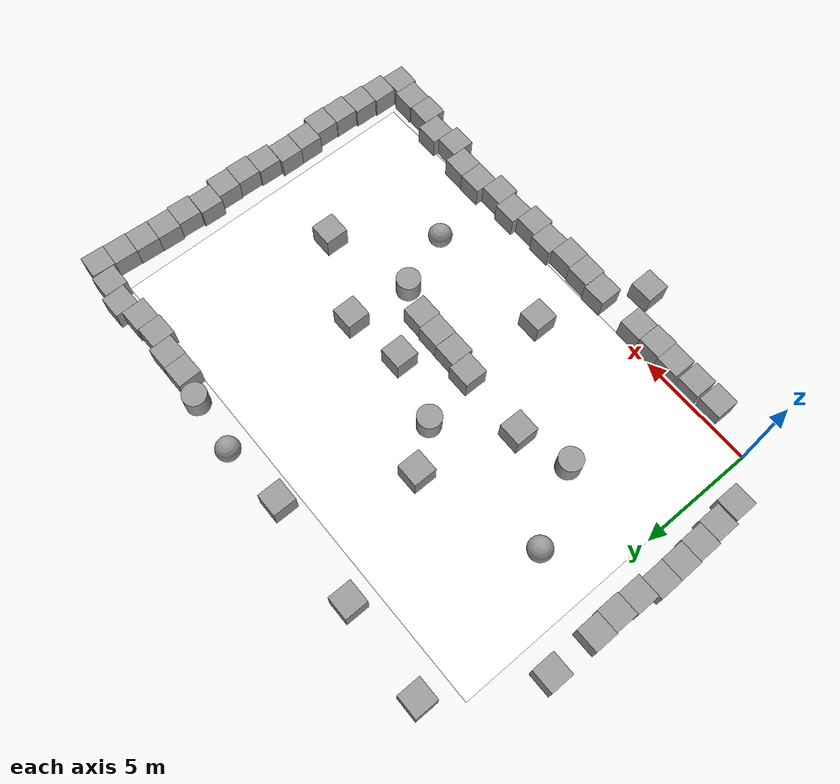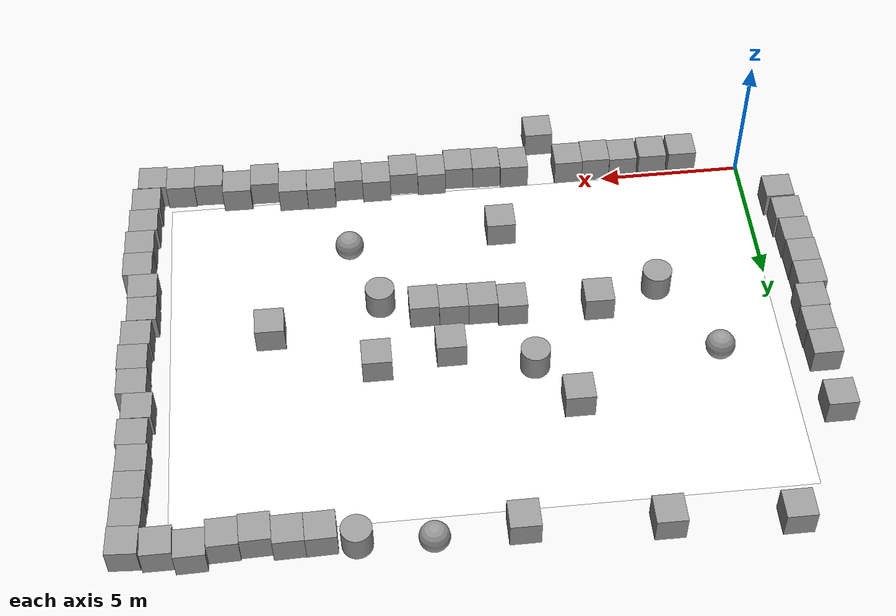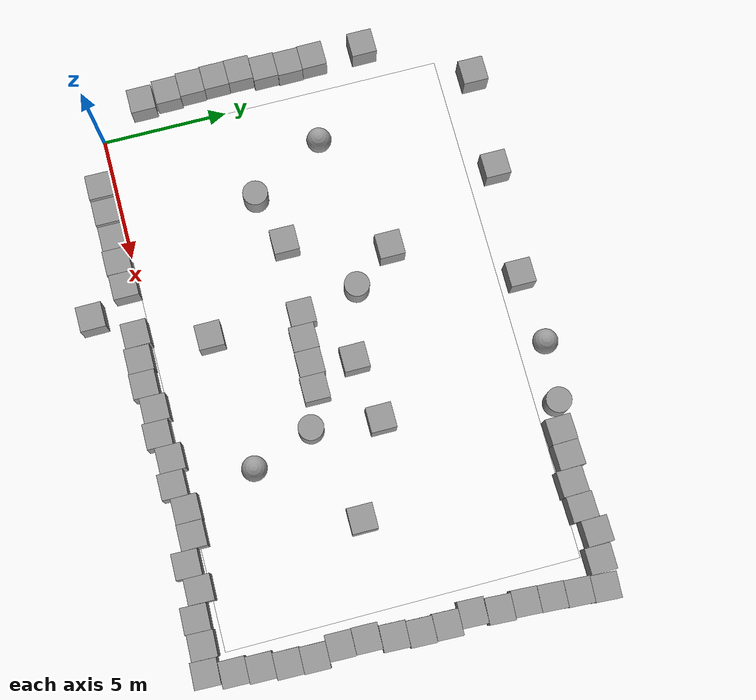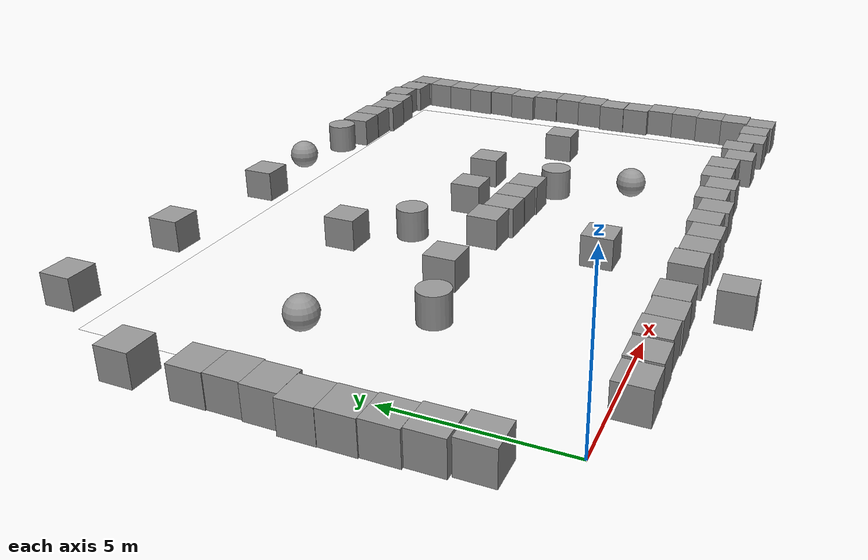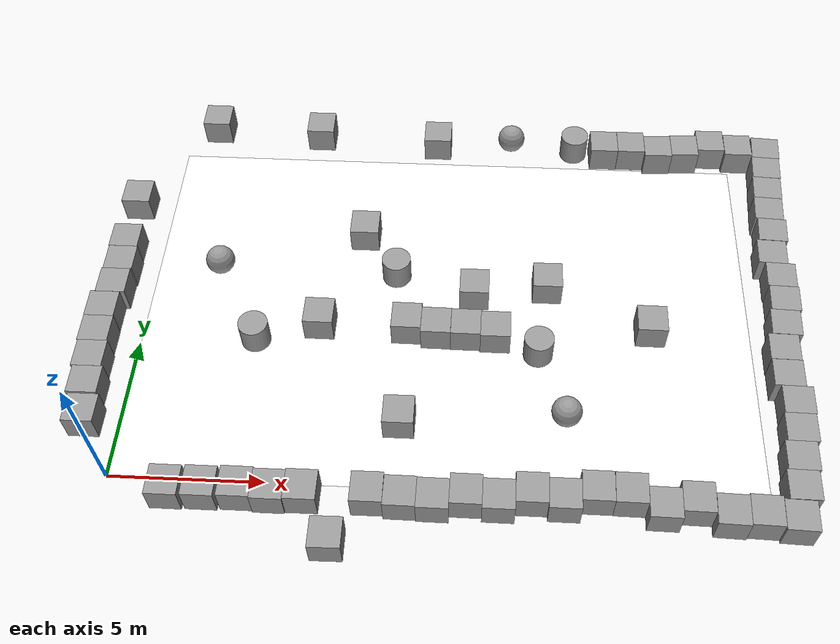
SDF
<sdf version="1.7">
 <world name="bfmc_official">
  <gravity>0 0 -9.8</gravity>
  <light name="c1" type="point">
   <pose>0 0 2 0 -0 0</pose>
   <diffuse>125 125 125 125</diffuse>
   <specular>50 50 50 50</specular>
   <attenuation><range>20</range><constant>0.3</constant><quadratic>0</quadratic><linear>0</linear></attenuation>
   <cast_shadows>0</cast_shadows>
   <direction>0 0 -1</direction>
   <spot><inner_angle>0</inner_angle><outer_angle>0</outer_angle><falloff>0</falloff></spot>
  </light>
  <light name="c2" type="point">
   <pose>15 0 2 0 -0 0</pose>
   <diffuse>125 125 125 125</diffuse>
   <specular>50 50 50 50</specular>
   <attenuation><range>20</range><constant>0.3</constant><quadratic>0</quadratic><linear>0</linear></attenuation>
   <cast_shadows>0</cast_shadows>
   <direction>0 0 -1</direction>
   <spot><inner_angle>0</inner_angle><outer_angle>0</outer_angle><falloff>0</falloff></spot>
  </light>
  <light name="c3" type="point">
   <pose>0 -15 2 0 -0 0</pose>
   <diffuse>125 125 125 125</diffuse>
   <specular>50 50 50 50</specular>
   <attenuation><range>20</range><constant>0.3</constant><quadratic>0</quadratic><linear>0</linear></attenuation>
   <cast_shadows>0</cast_shadows>
   <direction>0 0 -1</direction>
   <spot><inner_angle>0</inner_angle><outer_angle>0</outer_angle><falloff>0</falloff></spot>
  </light>
  <light name="c4" type="point">
   <pose>15 -15 2 0 -0 0</pose>
   <diffuse>125 125 125 125</diffuse>
   <specular>50 50 50 50</specular>
   <attenuation><range>50</range><constant>0.3</constant><quadratic>0</quadratic><linear>0</linear></attenuation>
   <cast_shadows>0</cast_shadows>
   <direction>0 0 -1</direction>
   <spot><inner_angle>0</inner_angle><outer_angle>0</outer_angle><falloff>0</falloff></spot>
  </light>
  <model name="track">
   <static>1</static>
   <link name="link">
    <collision name="collision">
     <geometry><plane><normal>0 0 1</normal><size>20.696 13.786</size></plane></geometry>
     <surface>
      <contact><collide_bitmask>65535</collide_bitmask></contact>
      <friction><ode><mu>1</mu><mu2>1</mu2></ode></friction>
     </surface>
    </collision>
    <visual name="visual">
     <geometry><plane><normal>0 0 1</normal><size>20.696 13.786</size></plane></geometry>
     <material>
      <ambient>1 1 1 1</ambient>
      <diffuse>1 1 1 1</diffuse>
      <specular>0 0 0 0</specular>
      <emissive>1 1 1 1</emissive>
      <script>
       <uri>model://track/materials/scripts</uri>
       <uri>model://track/materials/textures</uri>
       <name>BFMC_MATERIAL</name>
      </script>
     </material>
    </visual>
   </link>
   <pose>10.348 6.893 0 0 -0 0</pose>
  </model>
  <magnetic_field>6e-06 2.3e-05 -4.2e-05</magnetic_field>
  <atmosphere type="adiabatic"/>
  <physics name="default_physics" default="0" type="ode">
   <max_step_size>0.001</max_step_size>
   <real_time_factor>1</real_time_factor>
   <real_time_update_rate>1000</real_time_update_rate>
  </physics>
  <scene><ambient>0.4 0.4 0.4 1</ambient><background>0.7 0.7 0.7 1</background><shadows>1</shadows></scene>
  <audio><device>default</device></audio>
  <spherical_coordinates>
   <surface_model>EARTH_WGS84</surface_model>
   <latitude_deg>0</latitude_deg>
   <longitude_deg>0</longitude_deg>
   <elevation>0</elevation>
   <heading_deg>0</heading_deg>
  </spherical_coordinates>
  <model name="unit_box">
   <pose>5.25056 -0.5128 0.499995 -1e-05 -0 -0.004476</pose>
   <link name="link">
    <inertial>
     <mass>1</mass>
     <inertia>
      <ixx>0.166667</ixx>
      <ixy>0</ixy>
      <ixz>0</ixz>
      <iyy>0.166667</iyy>
      <iyz>0</iyz>
      <izz>0.166667</izz>
     </inertia>
    </inertial>
    <collision name="collision"><geometry><box><size>1 1 1</size></box></geometry></collision>
    <visual name="visual">
     <geometry><box><size>1 1 1</size></box></geometry>
     <material>
      <script><name>Gazebo/Grey</name><uri>file://media/materials/scripts/gazebo.material</uri></script>
     </material>
    </visual>
   </link>
  </model>
  <model name="unit_box_0">
   <pose>-1.05299 1.86974 0.499995 -1e-05 0 0</pose>
   <link name="link">
    <inertial>
     <mass>1</mass>
     <inertia>
      <ixx>0.166667</ixx>
      <ixy>0</ixy>
      <ixz>0</ixz>
      <iyy>0.166667</iyy>
      <iyz>0</iyz>
      <izz>0.166667</izz>
     </inertia>
    </inertial>
    <collision name="collision"><geometry><box><size>1 1 1</size></box></geometry></collision>
    <visual name="visual">
     <geometry><box><size>1 1 1</size></box></geometry>
     <material>
      <script><name>Gazebo/Grey</name><uri>file://media/materials/scripts/gazebo.material</uri></script>
     </material>
    </visual>
   </link>
  </model>
  <model name="unit_box_1">
   <pose>-1.16898 2.92188 0.499995 0 1e-05 0.003784</pose>
   <link name="link">
    <inertial>
     <mass>1</mass>
     <inertia>
      <ixx>0.166667</ixx>
      <ixy>0</ixy>
      <ixz>0</ixz>
      <iyy>0.166667</iyy>
      <iyz>0</iyz>
      <izz>0.166667</izz>
     </inertia>
    </inertial>
    <collision name="collision"><geometry><box><size>1 1 1</size></box></geometry></collision>
    <visual name="visual">
     <geometry><box><size>1 1 1</size></box></geometry>
     <material>
      <script><name>Gazebo/Grey</name><uri>file://media/materials/scripts/gazebo.material</uri></script>
     </material>
    </visual>
   </link>
  </model>
  <model name="unit_box_2">
   <pose>-1.30246 5.92229 0.499995 -1e-05 -0 0.003165</pose>
   <link name="link">
    <inertial>
     <mass>1</mass>
     <inertia>
      <ixx>0.166667</ixx>
      <ixy>0</ixy>
      <ixz>0</ixz>
      <iyy>0.166667</iyy>
      <iyz>0</iyz>
      <izz>0.166667</izz>
     </inertia>
    </inertial>
    <collision name="collision"><geometry><box><size>1 1 1</size></box></geometry></collision>
    <visual name="visual">
     <geometry><box><size>1 1 1</size></box></geometry>
     <material>
      <script><name>Gazebo/Grey</name><uri>file://media/materials/scripts/gazebo.material</uri></script>
     </material>
    </visual>
   </link>
  </model>
  <model name="unit_box_3">
   <pose>-1.12061 7.924 0.499995 1e-05 -0 0.002973</pose>
   <link name="link">
    <inertial>
     <mass>1</mass>
     <inertia>
      <ixx>0.166667</ixx>
      <ixy>0</ixy>
      <ixz>0</ixz>
      <iyy>0.166667</iyy>
      <iyz>0</iyz>
      <izz>0.166667</izz>
     </inertia>
    </inertial>
    <collision name="collision"><geometry><box><size>1 1 1</size></box></geometry></collision>
    <visual name="visual">
     <geometry><box><size>1 1 1</size></box></geometry>
     <material>
      <script><name>Gazebo/Grey</name><uri>file://media/materials/scripts/gazebo.material</uri></script>
     </material>
    </visual>
   </link>
  </model>
  <model name="unit_box_4">
   <pose>-1.16355 11.0049 0.499995 -1e-05 0 0</pose>
   <link name="link">
    <inertial>
     <mass>1</mass>
     <inertia>
      <ixx>0.166667</ixx>
      <ixy>0</ixy>
      <ixz>0</ixz>
      <iyy>0.166667</iyy>
      <iyz>0</iyz>
      <izz>0.166667</izz>
     </inertia>
    </inertial>
    <collision name="collision"><geometry><box><size>1 1 1</size></box></geometry></collision>
    <visual name="visual">
     <geometry><box><size>1 1 1</size></box></geometry>
     <material>
      <script><name>Gazebo/Grey</name><uri>file://media/materials/scripts/gazebo.material</uri></script>
     </material>
    </visual>
   </link>
  </model>
  <model name="unit_box_5">
   <pose>1.10899 15.0332 0.499995 -1e-05 0 0</pose>
   <link name="link">
    <inertial>
     <mass>1</mass>
     <inertia>
      <ixx>0.166667</ixx>
      <ixy>0</ixy>
      <ixz>0</ixz>
      <iyy>0.166667</iyy>
      <iyz>0</iyz>
      <izz>0.166667</izz>
     </inertia>
    </inertial>
    <collision name="collision"><geometry><box><size>1 1 1</size></box></geometry></collision>
    <visual name="visual">
     <geometry><box><size>1 1 1</size></box></geometry>
     <material>
      <script><name>Gazebo/Grey</name><uri>file://media/materials/scripts/gazebo.material</uri></script>
     </material>
    </visual>
   </link>
  </model>
  <model name="unit_box_6">
   <pose>5.1327 14.8187 0.499995 -1e-05 0 0</pose>
   <link name="link">
    <inertial>
     <mass>1</mass>
     <inertia>
      <ixx>0.166667</ixx>
      <ixy>0</ixy>
      <ixz>0</ixz>
      <iyy>0.166667</iyy>
      <iyz>0</iyz>
      <izz>0.166667</izz>
     </inertia>
    </inertial>
    <collision name="collision"><geometry><box><size>1 1 1</size></box></geometry></collision>
    <visual name="visual">
     <geometry><box><size>1 1 1</size></box></geometry>
     <material>
      <script><name>Gazebo/Grey</name><uri>file://media/materials/scripts/gazebo.material</uri></script>
     </material>
    </visual>
   </link>
  </model>
  <model name="unit_box_7">
   <pose>9.63576 14.5303 0.499995 -1e-05 0 0</pose>
   <link name="link">
    <inertial>
     <mass>1</mass>
     <inertia>
      <ixx>0.166667</ixx>
      <ixy>0</ixy>
      <ixz>0</ixz>
      <iyy>0.166667</iyy>
      <iyz>0</iyz>
      <izz>0.166667</izz>
     </inertia>
    </inertial>
    <collision name="collision"><geometry><box><size>1 1 1</size></box></geometry></collision>
    <visual name="visual">
     <geometry><box><size>1 1 1</size></box></geometry>
     <material>
      <script><name>Gazebo/Grey</name><uri>file://media/materials/scripts/gazebo.material</uri></script>
     </material>
    </visual>
   </link>
  </model>
  <model name="unit_sphere">
   <pose>12.436 14.7765 0.5 0 -0 0</pose>
   <link name="link">
    <inertial>
     <mass>1</mass>
     <inertia><ixx>0.1</ixx><ixy>0</ixy><ixz>0</ixz><iyy>0.1</iyy><iyz>0</iyz><izz>0.1</izz></inertia>
    </inertial>
    <collision name="collision"><geometry><sphere><radius>0.5</radius></sphere></geometry></collision>
    <visual name="visual">
     <geometry><sphere><radius>0.5</radius></sphere></geometry>
     <material>
      <script><name>Gazebo/Grey</name><uri>file://media/materials/scripts/gazebo.material</uri></script>
     </material>
    </visual>
   </link>
  </model>
  <model name="unit_cylinder_1">
   <pose>14.8242 14.5393 0.499997 2e-06 -0 0</pose>
   <link name="link">
    <inertial>
     <mass>1</mass>
     <inertia><ixx>0.145833</ixx><ixy>0</ixy><ixz>0</ixz><iyy>0.145833</iyy><iyz>0</iyz><izz>0.125</izz></inertia>
    </inertial>
    <collision name="collision">
     <geometry><cylinder><radius>0.5</radius><length>1</length></cylinder></geometry>
    </collision>
    <visual name="visual">
     <geometry><cylinder><radius>0.5</radius><length>1</length></cylinder></geometry>
     <material>
      <script><name>Gazebo/Grey</name><uri>file://media/materials/scripts/gazebo.material</uri></script>
     </material>
    </visual>
   </link>
  </model>
  <model name="unit_box_8">
   <pose>17.9331 14.1508 0.499995 -1e-05 -0 0.023872</pose>
   <link name="link">
    <inertial>
     <mass>1</mass>
     <inertia>
      <ixx>0.166667</ixx>
      <ixy>0</ixy>
      <ixz>0</ixz>
      <iyy>0.166667</iyy>
      <iyz>0</iyz>
      <izz>0.166667</izz>
     </inertia>
    </inertial>
    <collision name="collision"><geometry><box><size>1 1 1</size></box></geometry></collision>
    <visual name="visual">
     <geometry><box><size>1 1 1</size></box></geometry>
     <material>
      <script><name>Gazebo/Grey</name><uri>file://media/materials/scripts/gazebo.material</uri></script>
     </material>
    </visual>
   </link>
  </model>
  <model name="unit_cylinder_3">
   <pose>8.49799 8.27311 0.499997 2e-06 -0 0</pose>
   <link name="link">
    <inertial>
     <mass>1</mass>
     <inertia><ixx>0.145833</ixx><ixy>0</ixy><ixz>0</ixz><iyy>0.145833</iyy><iyz>0</iyz><izz>0.125</izz></inertia>
    </inertial>
    <collision name="collision">
     <geometry><cylinder><radius>0.5</radius><length>1</length></cylinder></geometry>
    </collision>
    <visual name="visual">
     <geometry><cylinder><radius>0.5</radius><length>1</length></cylinder></geometry>
     <material>
      <script><name>Gazebo/Grey</name><uri>file://media/materials/scripts/gazebo.material</uri></script>
     </material>
    </visual>
   </link>
  </model>
  <model name="unit_box_11">
   <pose>11.2572 7.45115 0.499995 0 1e-05 0</pose>
   <link name="link">
    <inertial>
     <mass>1</mass>
     <inertia>
      <ixx>0.166667</ixx>
      <ixy>0</ixy>
      <ixz>0</ixz>
      <iyy>0.166667</iyy>
      <iyz>0</iyz>
      <izz>0.166667</izz>
     </inertia>
    </inertial>
    <collision name="collision"><geometry><box><size>1 1 1</size></box></geometry></collision>
    <visual name="visual">
     <geometry><box><size>1 1 1</size></box></geometry>
     <material>
      <script><name>Gazebo/Grey</name><uri>file://media/materials/scripts/gazebo.material</uri></script>
     </material>
    </visual>
   </link>
  </model>
  <model name="unit_box_12">
   <pose>9.02065 5.91352 0.499995 -0 -1e-05 -0.00795</pose>
   <link name="link">
    <inertial>
     <mass>1</mass>
     <inertia>
      <ixx>0.166667</ixx>
      <ixy>0</ixy>
      <ixz>0</ixz>
      <iyy>0.166667</iyy>
      <iyz>0</iyz>
      <izz>0.166667</izz>
     </inertia>
    </inertial>
    <collision name="collision"><geometry><box><size>1 1 1</size></box></geometry></collision>
    <visual name="visual">
     <geometry><box><size>1 1 1</size></box></geometry>
     <material>
      <script><name>Gazebo/Grey</name><uri>file://media/materials/scripts/gazebo.material</uri></script>
     </material>
    </visual>
   </link>
  </model>
  <model name="unit_box_13">
   <pose>9.0191 2.27337 0.499995 0 1e-05 0</pose>
   <link name="link">
    <inertial>
     <mass>1</mass>
     <inertia>
      <ixx>0.166667</ixx>
      <ixy>0</ixy>
      <ixz>0</ixz>
      <iyy>0.166667</iyy>
      <iyz>0</iyz>
      <izz>0.166667</izz>
     </inertia>
    </inertial>
    <collision name="collision"><geometry><box><size>1 1 1</size></box></geometry></collision>
    <visual name="visual">
     <geometry><box><size>1 1 1</size></box></geometry>
     <material>
      <script><name>Gazebo/Grey</name><uri>file://media/materials/scripts/gazebo.material</uri></script>
     </material>
    </visual>
   </link>
  </model>
  <model name="unit_sphere_1">
   <pose>2.24558 8.35385 0.5 0 -0 0</pose>
   <link name="link">
    <inertial>
     <mass>1</mass>
     <inertia><ixx>0.1</ixx><ixy>0</ixy><ixz>0</ixz><iyy>0.1</iyy><iyz>0</iyz><izz>0.1</izz></inertia>
    </inertial>
    <collision name="collision"><geometry><sphere><radius>0.5</radius></sphere></geometry></collision>
    <visual name="visual">
     <geometry><sphere><radius>0.5</radius></sphere></geometry>
     <material>
      <script><name>Gazebo/Grey</name><uri>file://media/materials/scripts/gazebo.material</uri></script>
     </material>
    </visual>
   </link>
  </model>
  <model name="unit_cylinder_4">
   <pose>3.9133 5.34523 0.499997 2e-06 -0 0</pose>
   <link name="link">
    <inertial>
     <mass>1</mass>
     <inertia><ixx>0.145833</ixx><ixy>0</ixy><ixz>0</ixz><iyy>0.145833</iyy><iyz>0</iyz><izz>0.125</izz></inertia>
    </inertial>
    <collision name="collision">
     <geometry><cylinder><radius>0.5</radius><length>1</length></cylinder></geometry>
    </collision>
    <visual name="visual">
     <geometry><cylinder><radius>0.5</radius><length>1</length></cylinder></geometry>
     <material>
      <script><name>Gazebo/Grey</name><uri>file://media/materials/scripts/gazebo.material</uri></script>
     </material>
    </visual>
   </link>
  </model>
  <model name="unit_box_16">
   <pose>13.7726 7.8289 0.499995 0 1e-05 0</pose>
   <link name="link">
    <inertial>
     <mass>1</mass>
     <inertia>
      <ixx>0.166667</ixx>
      <ixy>0</ixy>
      <ixz>0</ixz>
      <iyy>0.166667</iyy>
      <iyz>0</iyz>
      <izz>0.166667</izz>
     </inertia>
    </inertial>
    <collision name="collision"><geometry><box><size>1 1 1</size></box></geometry></collision>
    <visual name="visual">
     <geometry><box><size>1 1 1</size></box></geometry>
     <material>
      <script><name>Gazebo/Grey</name><uri>file://media/materials/scripts/gazebo.material</uri></script>
     </material>
    </visual>
   </link>
  </model>
  <model name="unit_box_19">
   <pose>15.2637 -0.107817 0.499995 1e-05 0 -0.005598</pose>
   <link name="link">
    <inertial>
     <mass>1</mass>
     <inertia>
      <ixx>0.166667</ixx>
      <ixy>0</ixy>
      <ixz>0</ixz>
      <iyy>0.166667</iyy>
      <iyz>0</iyz>
      <izz>0.166667</izz>
     </inertia>
    </inertial>
    <collision name="collision"><geometry><box><size>1 1 1</size></box></geometry></collision>
    <visual name="visual">
     <geometry><box><size>1 1 1</size></box></geometry>
     <material>
      <script><name>Gazebo/Grey</name><uri>file://media/materials/scripts/gazebo.material</uri></script>
     </material>
    </visual>
   </link>
  </model>
  <model name="unit_cylinder_5">
   <pose>13.4763 5.16075 0.499997 0 -0 0</pose>
   <link name="link">
    <inertial>
     <mass>1</mass>
     <inertia><ixx>0.145833</ixx><ixy>0</ixy><ixz>0</ixz><iyy>0.145833</iyy><iyz>0</iyz><izz>0.125</izz></inertia>
    </inertial>
    <collision name="collision">
     <geometry><cylinder><radius>0.5</radius><length>1</length></cylinder></geometry>
    </collision>
    <visual name="visual">
     <geometry><cylinder><radius>0.5</radius><length>1</length></cylinder></geometry>
     <material>
      <script><name>Gazebo/Grey</name><uri>file://media/materials/scripts/gazebo.material</uri></script>
     </material>
    </visual>
   </link>
  </model>
  <model name="unit_sphere_8">
   <pose>14.3847 2.70769 0.5 0 -0 0</pose>
   <link name="link">
    <inertial>
     <mass>1</mass>
     <inertia><ixx>0.1</ixx><ixy>0</ixy><ixz>0</ixz><iyy>0.1</iyy><iyz>0</iyz><izz>0.1</izz></inertia>
    </inertial>
    <collision name="collision"><geometry><sphere><radius>0.5</radius></sphere></geometry></collision>
    <visual name="visual">
     <geometry><sphere><radius>0.5</radius></sphere></geometry>
     <material>
      <script><name>Gazebo/Grey</name><uri>file://media/materials/scripts/gazebo.material</uri></script>
     </material>
    </visual>
   </link>
  </model>
  <model name="unit_box_clone">
   <pose>6.25206 -0.475349 0.499995 -1e-05 -0 -0.001601</pose>
   <link name="link">
    <inertial>
     <mass>1</mass>
     <inertia>
      <ixx>0.166667</ixx>
      <ixy>0</ixy>
      <ixz>0</ixz>
      <iyy>0.166667</iyy>
      <iyz>0</iyz>
      <izz>0.166667</izz>
     </inertia>
    </inertial>
    <collision name="collision"><geometry><box><size>1 1 1</size></box></geometry></collision>
    <visual name="visual">
     <geometry><box><size>1 1 1</size></box></geometry>
     <material>
      <script><name>Gazebo/Grey</name><uri>file://media/materials/scripts/gazebo.material</uri></script>
     </material>
    </visual>
   </link>
  </model>
  <model name="unit_box_clone_0">
   <pose>7.16861 -1.98434 0.499995 0 -1e-05 0.00838</pose>
   <link name="link">
    <inertial>
     <mass>1</mass>
     <inertia>
      <ixx>0.166667</ixx>
      <ixy>0</ixy>
      <ixz>0</ixz>
      <iyy>0.166667</iyy>
      <iyz>0</iyz>
      <izz>0.166667</izz>
     </inertia>
    </inertial>
    <collision name="collision"><geometry><box><size>1 1 1</size></box></geometry></collision>
    <visual name="visual">
     <geometry><box><size>1 1 1</size></box></geometry>
     <material>
      <script><name>Gazebo/Grey</name><uri>file://media/materials/scripts/gazebo.material</uri></script>
     </material>
    </visual>
   </link>
  </model>
  <model name="unit_box_clone_1">
   <pose>8.25455 -0.460229 0.5 0 -0 0.00311</pose>
   <link name="link">
    <inertial>
     <mass>1</mass>
     <inertia>
      <ixx>0.166667</ixx>
      <ixy>0</ixy>
      <ixz>0</ixz>
      <iyy>0.166667</iyy>
      <iyz>0</iyz>
      <izz>0.166667</izz>
     </inertia>
    </inertial>
    <collision name="collision"><geometry><box><size>1 1 1</size></box></geometry></collision>
    <visual name="visual">
     <geometry><box><size>1 1 1</size></box></geometry>
     <material>
      <script><name>Gazebo/Grey</name><uri>file://media/materials/scripts/gazebo.material</uri></script>
     </material>
    </visual>
   </link>
  </model>
  <model name="unit_box_clone_2">
   <pose>9.25901 -0.550496 0.5 0 -0 -0.007082</pose>
   <link name="link">
    <inertial>
     <mass>1</mass>
     <inertia>
      <ixx>0.166667</ixx>
      <ixy>0</ixy>
      <ixz>0</ixz>
      <iyy>0.166667</iyy>
      <iyz>0</iyz>
      <izz>0.166667</izz>
     </inertia>
    </inertial>
    <collision name="collision"><geometry><box><size>1 1 1</size></box></geometry></collision>
    <visual name="visual">
     <geometry><box><size>1 1 1</size></box></geometry>
     <material>
      <script><name>Gazebo/Grey</name><uri>file://media/materials/scripts/gazebo.material</uri></script>
     </material>
    </visual>
   </link>
  </model>
  <model name="unit_box_clone_3">
   <pose>10.2588 -0.585709 0.5 0 0 -0.007084</pose>
   <link name="link">
    <inertial>
     <mass>1</mass>
     <inertia>
      <ixx>0.166667</ixx>
      <ixy>0</ixy>
      <ixz>0</ixz>
      <iyy>0.166667</iyy>
      <iyz>0</iyz>
      <izz>0.166667</izz>
     </inertia>
    </inertial>
    <collision name="collision"><geometry><box><size>1 1 1</size></box></geometry></collision>
    <visual name="visual">
     <geometry><box><size>1 1 1</size></box></geometry>
     <material>
      <script><name>Gazebo/Grey</name><uri>file://media/materials/scripts/gazebo.material</uri></script>
     </material>
    </visual>
   </link>
  </model>
  <model name="unit_box_clone_4">
   <pose>11.2602 -0.395576 0.499995 -1e-05 0 -0.007049</pose>
   <link name="link">
    <inertial>
     <mass>1</mass>
     <inertia>
      <ixx>0.166667</ixx>
      <ixy>0</ixy>
      <ixz>0</ixz>
      <iyy>0.166667</iyy>
      <iyz>0</iyz>
      <izz>0.166667</izz>
     </inertia>
    </inertial>
    <collision name="collision"><geometry><box><size>1 1 1</size></box></geometry></collision>
    <visual name="visual">
     <geometry><box><size>1 1 1</size></box></geometry>
     <material>
      <script><name>Gazebo/Grey</name><uri>file://media/materials/scripts/gazebo.material</uri></script>
     </material>
    </visual>
   </link>
  </model>
  <model name="unit_box_clone_5">
   <pose>12.2594 -0.51614 0.499995 0 -1e-05 -0.007031</pose>
   <link name="link">
    <inertial>
     <mass>1</mass>
     <inertia>
      <ixx>0.166667</ixx>
      <ixy>0</ixy>
      <ixz>0</ixz>
      <iyy>0.166667</iyy>
      <iyz>0</iyz>
      <izz>0.166667</izz>
     </inertia>
    </inertial>
    <collision name="collision"><geometry><box><size>1 1 1</size></box></geometry></collision>
    <visual name="visual">
     <geometry><box><size>1 1 1</size></box></geometry>
     <material>
      <script><name>Gazebo/Grey</name><uri>file://media/materials/scripts/gazebo.material</uri></script>
     </material>
    </visual>
   </link>
  </model>
  <model name="unit_box_clone_6">
   <pose>13.2621 -0.250666 0.499995 0 -1e-05 -0.003581</pose>
   <link name="link">
    <inertial>
     <mass>1</mass>
     <inertia>
      <ixx>0.166667</ixx>
      <ixy>0</ixy>
      <ixz>0</ixz>
      <iyy>0.166667</iyy>
      <iyz>0</iyz>
      <izz>0.166667</izz>
     </inertia>
    </inertial>
    <collision name="collision"><geometry><box><size>1 1 1</size></box></geometry></collision>
    <visual name="visual">
     <geometry><box><size>1 1 1</size></box></geometry>
     <material>
      <script><name>Gazebo/Grey</name><uri>file://media/materials/scripts/gazebo.material</uri></script>
     </material>
    </visual>
   </link>
  </model>
  <model name="unit_box_clone_7">
   <pose>14.2616 -0.405886 0.499995 1e-05 -0 -0.003573</pose>
   <link name="link">
    <inertial>
     <mass>1</mass>
     <inertia>
      <ixx>0.166667</ixx>
      <ixy>0</ixy>
      <ixz>0</ixz>
      <iyy>0.166667</iyy>
      <iyz>0</iyz>
      <izz>0.166667</izz>
     </inertia>
    </inertial>
    <collision name="collision"><geometry><box><size>1 1 1</size></box></geometry></collision>
    <visual name="visual">
     <geometry><box><size>1 1 1</size></box></geometry>
     <material>
      <script><name>Gazebo/Grey</name><uri>file://media/materials/scripts/gazebo.material</uri></script>
     </material>
    </visual>
   </link>
  </model>
  <model name="unit_box_clone_8">
   <pose>16.2663 -0.127591 0.499995 1e-05 -0 -0.01108</pose>
   <link name="link">
    <inertial>
     <mass>1</mass>
     <inertia>
      <ixx>0.166667</ixx>
      <ixy>0</ixy>
      <ixz>0</ixz>
      <iyy>0.166667</iyy>
      <iyz>0</iyz>
      <izz>0.166667</izz>
     </inertia>
    </inertial>
    <collision name="collision"><geometry><box><size>1 1 1</size></box></geometry></collision>
    <visual name="visual">
     <geometry><box><size>1 1 1</size></box></geometry>
     <material>
      <script><name>Gazebo/Grey</name><uri>file://media/materials/scripts/gazebo.material</uri></script>
     </material>
    </visual>
   </link>
  </model>
  <model name="unit_box_clone_9">
   <pose>17.2622 -0.563549 0.499995 -0 1e-05 -0.016686</pose>
   <link name="link">
    <inertial>
     <mass>1</mass>
     <inertia>
      <ixx>0.166667</ixx>
      <ixy>0</ixy>
      <ixz>0</ixz>
      <iyy>0.166667</iyy>
      <iyz>0</iyz>
      <izz>0.166667</izz>
     </inertia>
    </inertial>
    <collision name="collision"><geometry><box><size>1 1 1</size></box></geometry></collision>
    <visual name="visual">
     <geometry><box><size>1 1 1</size></box></geometry>
     <material>
      <script><name>Gazebo/Grey</name><uri>file://media/materials/scripts/gazebo.material</uri></script>
     </material>
    </visual>
   </link>
  </model>
  <model name="unit_box_clone_10">
   <pose>18.2663 -0.330761 0.499995 -1e-05 -0 -0.016806</pose>
   <link name="link">
    <inertial>
     <mass>1</mass>
     <inertia>
      <ixx>0.166667</ixx>
      <ixy>0</ixy>
      <ixz>0</ixz>
      <iyy>0.166667</iyy>
      <iyz>0</iyz>
      <izz>0.166667</izz>
     </inertia>
    </inertial>
    <collision name="collision"><geometry><box><size>1 1 1</size></box></geometry></collision>
    <visual name="visual">
     <geometry><box><size>1 1 1</size></box></geometry>
     <material>
      <script><name>Gazebo/Grey</name><uri>file://media/materials/scripts/gazebo.material</uri></script>
     </material>
    </visual>
   </link>
  </model>
  <model name="unit_box_clone_11">
   <pose>19.2624 -0.699813 0.499995 1e-05 -0 -0.031016</pose>
   <link name="link">
    <inertial>
     <mass>1</mass>
     <inertia>
      <ixx>0.166667</ixx>
      <ixy>0</ixy>
      <ixz>0</ixz>
      <iyy>0.166667</iyy>
      <iyz>0</iyz>
      <izz>0.166667</izz>
     </inertia>
    </inertial>
    <collision name="collision"><geometry><box><size>1 1 1</size></box></geometry></collision>
    <visual name="visual">
     <geometry><box><size>1 1 1</size></box></geometry>
     <material>
      <script><name>Gazebo/Grey</name><uri>file://media/materials/scripts/gazebo.material</uri></script>
     </material>
    </visual>
   </link>
  </model>
  <model name="unit_box_clone_12">
   <pose>21.261 -0.798458 0.499995 -1e-05 -0 -0.032727</pose>
   <link name="link">
    <inertial>
     <mass>1</mass>
     <inertia>
      <ixx>0.166667</ixx>
      <ixy>0</ixy>
      <ixz>0</ixz>
      <iyy>0.166667</iyy>
      <iyz>0</iyz>
      <izz>0.166667</izz>
     </inertia>
    </inertial>
    <collision name="collision"><geometry><box><size>1 1 1</size></box></geometry></collision>
    <visual name="visual">
     <geometry><box><size>1 1 1</size></box></geometry>
     <material>
      <script><name>Gazebo/Grey</name><uri>file://media/materials/scripts/gazebo.material</uri></script>
     </material>
    </visual>
   </link>
  </model>
  <model name="unit_box_clone_13">
   <pose>20.2635 -0.681079 0.499995 -1e-05 -0 -0.031055</pose>
   <link name="link">
    <inertial>
     <mass>1</mass>
     <inertia>
      <ixx>0.166667</ixx>
      <ixy>0</ixy>
      <ixz>0</ixz>
      <iyy>0.166667</iyy>
      <iyz>0</iyz>
      <izz>0.166667</izz>
     </inertia>
    </inertial>
    <collision name="collision"><geometry><box><size>1 1 1</size></box></geometry></collision>
    <visual name="visual">
     <geometry><box><size>1 1 1</size></box></geometry>
     <material>
      <script><name>Gazebo/Grey</name><uri>file://media/materials/scripts/gazebo.material</uri></script>
     </material>
    </visual>
   </link>
  </model>
  <model name="unit_box_clone_14">
   <pose>21.4718 0.209062 0.499995 0 1e-05 -0.017803</pose>
   <link name="link">
    <inertial>
     <mass>1</mass>
     <inertia>
      <ixx>0.166667</ixx>
      <ixy>0</ixy>
      <ixz>0</ixz>
      <iyy>0.166667</iyy>
      <iyz>0</iyz>
      <izz>0.166667</izz>
     </inertia>
    </inertial>
    <collision name="collision"><geometry><box><size>1 1 1</size></box></geometry></collision>
    <visual name="visual">
     <geometry><box><size>1 1 1</size></box></geometry>
     <material>
      <script><name>Gazebo/Grey</name><uri>file://media/materials/scripts/gazebo.material</uri></script>
     </material>
    </visual>
   </link>
  </model>
  <model name="unit_box_clone_15">
   <pose>21.5537 1.20777 0.499995 -0 1e-05 -0.017806</pose>
   <link name="link">
    <inertial>
     <mass>1</mass>
     <inertia>
      <ixx>0.166667</ixx>
      <ixy>0</ixy>
      <ixz>0</ixz>
      <iyy>0.166667</iyy>
      <iyz>0</iyz>
      <izz>0.166667</izz>
     </inertia>
    </inertial>
    <collision name="collision"><geometry><box><size>1 1 1</size></box></geometry></collision>
    <visual name="visual">
     <geometry><box><size>1 1 1</size></box></geometry>
     <material>
      <script><name>Gazebo/Grey</name><uri>file://media/materials/scripts/gazebo.material</uri></script>
     </material>
    </visual>
   </link>
  </model>
  <model name="unit_box_clone_16">
   <pose>21.6698 2.20587 0.499995 0 -1e-05 -0.017822</pose>
   <link name="link">
    <inertial>
     <mass>1</mass>
     <inertia>
      <ixx>0.166667</ixx>
      <ixy>0</ixy>
      <ixz>0</ixz>
      <iyy>0.166667</iyy>
      <iyz>0</iyz>
      <izz>0.166667</izz>
     </inertia>
    </inertial>
    <collision name="collision"><geometry><box><size>1 1 1</size></box></geometry></collision>
    <visual name="visual">
     <geometry><box><size>1 1 1</size></box></geometry>
     <material>
      <script><name>Gazebo/Grey</name><uri>file://media/materials/scripts/gazebo.material</uri></script>
     </material>
    </visual>
   </link>
  </model>
  <model name="unit_box_clone_17">
   <pose>21.7177 3.20521 0.499995 1e-05 0 -0.01788</pose>
   <link name="link">
    <inertial>
     <mass>1</mass>
     <inertia>
      <ixx>0.166667</ixx>
      <ixy>0</ixy>
      <ixz>0</ixz>
      <iyy>0.166667</iyy>
      <iyz>0</iyz>
      <izz>0.166667</izz>
     </inertia>
    </inertial>
    <collision name="collision"><geometry><box><size>1 1 1</size></box></geometry></collision>
    <visual name="visual">
     <geometry><box><size>1 1 1</size></box></geometry>
     <material>
      <script><name>Gazebo/Grey</name><uri>file://media/materials/scripts/gazebo.material</uri></script>
     </material>
    </visual>
   </link>
  </model>
  <model name="unit_box_clone_18">
   <pose>21.5299 4.20873 0.499995 1e-05 -0 -0.017882</pose>
   <link name="link">
    <inertial>
     <mass>1</mass>
     <inertia>
      <ixx>0.166667</ixx>
      <ixy>0</ixy>
      <ixz>0</ixz>
      <iyy>0.166667</iyy>
      <iyz>0</iyz>
      <izz>0.166667</izz>
     </inertia>
    </inertial>
    <collision name="collision"><geometry><box><size>1 1 1</size></box></geometry></collision>
    <visual name="visual">
     <geometry><box><size>1 1 1</size></box></geometry>
     <material>
      <script><name>Gazebo/Grey</name><uri>file://media/materials/scripts/gazebo.material</uri></script>
     </material>
    </visual>
   </link>
  </model>
  <model name="unit_box_clone_19">
   <pose>21.5321 5.21109 0.499995 -1e-05 -0 -0.022311</pose>
   <link name="link">
    <inertial>
     <mass>1</mass>
     <inertia>
      <ixx>0.166667</ixx>
      <ixy>0</ixy>
      <ixz>0</ixz>
      <iyy>0.166667</iyy>
      <iyz>0</iyz>
      <izz>0.166667</izz>
     </inertia>
    </inertial>
    <collision name="collision"><geometry><box><size>1 1 1</size></box></geometry></collision>
    <visual name="visual">
     <geometry><box><size>1 1 1</size></box></geometry>
     <material>
      <script><name>Gazebo/Grey</name><uri>file://media/materials/scripts/gazebo.material</uri></script>
     </material>
    </visual>
   </link>
  </model>
  <model name="unit_box_clone_20">
   <pose>21.7144 6.21234 0.499995 1e-05 -0 -0.037055</pose>
   <link name="link">
    <inertial>
     <mass>1</mass>
     <inertia>
      <ixx>0.166667</ixx>
      <ixy>0</ixy>
      <ixz>0</ixz>
      <iyy>0.166667</iyy>
      <iyz>0</iyz>
      <izz>0.166667</izz>
     </inertia>
    </inertial>
    <collision name="collision"><geometry><box><size>1 1 1</size></box></geometry></collision>
    <visual name="visual">
     <geometry><box><size>1 1 1</size></box></geometry>
     <material>
      <script><name>Gazebo/Grey</name><uri>file://media/materials/scripts/gazebo.material</uri></script>
     </material>
    </visual>
   </link>
  </model>
  <model name="unit_box_clone_21">
   <pose>21.8084 7.21009 0.499995 1e-05 0 -0.036128</pose>
   <link name="link">
    <inertial>
     <mass>1</mass>
     <inertia>
      <ixx>0.166667</ixx>
      <ixy>0</ixy>
      <ixz>0</ixz>
      <iyy>0.166667</iyy>
      <iyz>0</iyz>
      <izz>0.166667</izz>
     </inertia>
    </inertial>
    <collision name="collision"><geometry><box><size>1 1 1</size></box></geometry></collision>
    <visual name="visual">
     <geometry><box><size>1 1 1</size></box></geometry>
     <material>
      <script><name>Gazebo/Grey</name><uri>file://media/materials/scripts/gazebo.material</uri></script>
     </material>
    </visual>
   </link>
  </model>
  <model name="unit_box_clone_22">
   <pose>21.811 8.21138 0.499995 -1e-05 -0 -0.035803</pose>
   <link name="link">
    <inertial>
     <mass>1</mass>
     <inertia>
      <ixx>0.166667</ixx>
      <ixy>0</ixy>
      <ixz>0</ixz>
      <iyy>0.166667</iyy>
      <iyz>0</iyz>
      <izz>0.166667</izz>
     </inertia>
    </inertial>
    <collision name="collision"><geometry><box><size>1 1 1</size></box></geometry></collision>
    <visual name="visual">
     <geometry><box><size>1 1 1</size></box></geometry>
     <material>
      <script><name>Gazebo/Grey</name><uri>file://media/materials/scripts/gazebo.material</uri></script>
     </material>
    </visual>
   </link>
  </model>
  <model name="unit_box_clone_23">
   <pose>21.6211 9.2191 0.5 0 -0 -0.03633</pose>
   <link name="link">
    <inertial>
     <mass>1</mass>
     <inertia>
      <ixx>0.166667</ixx>
      <ixy>0</ixy>
      <ixz>0</ixz>
      <iyy>0.166667</iyy>
      <iyz>0</iyz>
      <izz>0.166667</izz>
     </inertia>
    </inertial>
    <collision name="collision"><geometry><box><size>1 1 1</size></box></geometry></collision>
    <visual name="visual">
     <geometry><box><size>1 1 1</size></box></geometry>
     <material>
      <script><name>Gazebo/Grey</name><uri>file://media/materials/scripts/gazebo.material</uri></script>
     </material>
    </visual>
   </link>
  </model>
  <model name="unit_box_clone_24">
   <pose>21.7535 10.2229 0.5 0 0 -0.055743</pose>
   <link name="link">
    <inertial>
     <mass>1</mass>
     <inertia>
      <ixx>0.166667</ixx>
      <ixy>0</ixy>
      <ixz>0</ixz>
      <iyy>0.166667</iyy>
      <iyz>0</iyz>
      <izz>0.166667</izz>
     </inertia>
    </inertial>
    <collision name="collision"><geometry><box><size>1 1 1</size></box></geometry></collision>
    <visual name="visual">
     <geometry><box><size>1 1 1</size></box></geometry>
     <material>
      <script><name>Gazebo/Grey</name><uri>file://media/materials/scripts/gazebo.material</uri></script>
     </material>
    </visual>
   </link>
  </model>
  <model name="unit_box_clone_25">
   <pose>21.7406 11.2253 0.499995 0 -1e-05 -0.055987</pose>
   <link name="link">
    <inertial>
     <mass>1</mass>
     <inertia>
      <ixx>0.166667</ixx>
      <ixy>0</ixy>
      <ixz>0</ixz>
      <iyy>0.166667</iyy>
      <iyz>0</iyz>
      <izz>0.166667</izz>
     </inertia>
    </inertial>
    <collision name="collision"><geometry><box><size>1 1 1</size></box></geometry></collision>
    <visual name="visual">
     <geometry><box><size>1 1 1</size></box></geometry>
     <material>
      <script><name>Gazebo/Grey</name><uri>file://media/materials/scripts/gazebo.material</uri></script>
     </material>
    </visual>
   </link>
  </model>
  <model name="unit_box_clone_26">
   <pose>21.8072 12.2241 0.499995 -0 -1e-05 -0.057674</pose>
   <link name="link">
    <inertial>
     <mass>1</mass>
     <inertia>
      <ixx>0.166667</ixx>
      <ixy>0</ixy>
      <ixz>0</ixz>
      <iyy>0.166667</iyy>
      <iyz>0</iyz>
      <izz>0.166667</izz>
     </inertia>
    </inertial>
    <collision name="collision"><geometry><box><size>1 1 1</size></box></geometry></collision>
    <visual name="visual">
     <geometry><box><size>1 1 1</size></box></geometry>
     <material>
      <script><name>Gazebo/Grey</name><uri>file://media/materials/scripts/gazebo.material</uri></script>
     </material>
    </visual>
   </link>
  </model>
  <model name="unit_box_clone_27">
   <pose>21.8831 13.2221 0.499995 0 -1e-05 -0.057701</pose>
   <link name="link">
    <inertial>
     <mass>1</mass>
     <inertia>
      <ixx>0.166667</ixx>
      <ixy>0</ixy>
      <ixz>0</ixz>
      <iyy>0.166667</iyy>
      <iyz>0</iyz>
      <izz>0.166667</izz>
     </inertia>
    </inertial>
    <collision name="collision"><geometry><box><size>1 1 1</size></box></geometry></collision>
    <visual name="visual">
     <geometry><box><size>1 1 1</size></box></geometry>
     <material>
      <script><name>Gazebo/Grey</name><uri>file://media/materials/scripts/gazebo.material</uri></script>
     </material>
    </visual>
   </link>
  </model>
  <model name="unit_box_clone_28">
   <pose>21.9626 14.2192 0.499995 -0 -1e-05 -0.057658</pose>
   <link name="link">
    <inertial>
     <mass>1</mass>
     <inertia>
      <ixx>0.166667</ixx>
      <ixy>0</ixy>
      <ixz>0</ixz>
      <iyy>0.166667</iyy>
      <iyz>0</iyz>
      <izz>0.166667</izz>
     </inertia>
    </inertial>
    <collision name="collision"><geometry><box><size>1 1 1</size></box></geometry></collision>
    <visual name="visual">
     <geometry><box><size>1 1 1</size></box></geometry>
     <material>
      <script><name>Gazebo/Grey</name><uri>file://media/materials/scripts/gazebo.material</uri></script>
     </material>
    </visual>
   </link>
  </model>
  <model name="unit_box_clone_29">
   <pose>20.9381 14.3352 0.499995 -1e-05 -0 0.000944</pose>
   <link name="link">
    <inertial>
     <mass>1</mass>
     <inertia>
      <ixx>0.166667</ixx>
      <ixy>0</ixy>
      <ixz>0</ixz>
      <iyy>0.166667</iyy>
      <iyz>0</iyz>
      <izz>0.166667</izz>
     </inertia>
    </inertial>
    <collision name="collision"><geometry><box><size>1 1 1</size></box></geometry></collision>
    <visual name="visual">
     <geometry><box><size>1 1 1</size></box></geometry>
     <material>
      <script><name>Gazebo/Grey</name><uri>file://media/materials/scripts/gazebo.material</uri></script>
     </material>
    </visual>
   </link>
  </model>
  <model name="unit_box_clone_30">
   <pose>19.9277 14.5144 0.499995 -0 -1e-05 0.0215</pose>
   <link name="link">
    <inertial>
     <mass>1</mass>
     <inertia>
      <ixx>0.166667</ixx>
      <ixy>0</ixy>
      <ixz>0</ixz>
      <iyy>0.166667</iyy>
      <iyz>0</iyz>
      <izz>0.166667</izz>
     </inertia>
    </inertial>
    <collision name="collision"><geometry><box><size>1 1 1</size></box></geometry></collision>
    <visual name="visual">
     <geometry><box><size>1 1 1</size></box></geometry>
     <material>
      <script><name>Gazebo/Grey</name><uri>file://media/materials/scripts/gazebo.material</uri></script>
     </material>
    </visual>
   </link>
  </model>
  <model name="unit_box_clone_31">
   <pose>18.9322 14.2326 0.499995 -1e-05 0 0.022794</pose>
   <link name="link">
    <inertial>
     <mass>1</mass>
     <inertia>
      <ixx>0.166667</ixx>
      <ixy>0</ixy>
      <ixz>0</ixz>
      <iyy>0.166667</iyy>
      <iyz>0</iyz>
      <izz>0.166667</izz>
     </inertia>
    </inertial>
    <collision name="collision"><geometry><box><size>1 1 1</size></box></geometry></collision>
    <visual name="visual">
     <geometry><box><size>1 1 1</size></box></geometry>
     <material>
      <script><name>Gazebo/Grey</name><uri>file://media/materials/scripts/gazebo.material</uri></script>
     </material>
    </visual>
   </link>
  </model>
  <model name="unit_box_clone_32">
   <pose>16.9277 14.3153 0.499995 0 1e-05 0.024566</pose>
   <link name="link">
    <inertial>
     <mass>1</mass>
     <inertia>
      <ixx>0.166667</ixx>
      <ixy>0</ixy>
      <ixz>0</ixz>
      <iyy>0.166667</iyy>
      <iyz>0</iyz>
      <izz>0.166667</izz>
     </inertia>
    </inertial>
    <collision name="collision"><geometry><box><size>1 1 1</size></box></geometry></collision>
    <visual name="visual">
     <geometry><box><size>1 1 1</size></box></geometry>
     <material>
      <script><name>Gazebo/Grey</name><uri>file://media/materials/scripts/gazebo.material</uri></script>
     </material>
    </visual>
   </link>
  </model>
  <model name="unit_box_clone_33">
   <pose>15.9268 14.3052 0.499995 0 1e-05 0.023668</pose>
   <link name="link">
    <inertial>
     <mass>1</mass>
     <inertia>
      <ixx>0.166667</ixx>
      <ixy>0</ixy>
      <ixz>0</ixz>
      <iyy>0.166667</iyy>
      <iyz>0</iyz>
      <izz>0.166667</izz>
     </inertia>
    </inertial>
    <collision name="collision"><geometry><box><size>1 1 1</size></box></geometry></collision>
    <visual name="visual">
     <geometry><box><size>1 1 1</size></box></geometry>
     <material>
      <script><name>Gazebo/Grey</name><uri>file://media/materials/scripts/gazebo.material</uri></script>
     </material>
    </visual>
   </link>
  </model>
  <model name="unit_box_clone_34">
   <pose>4.25073 -0.465611 0.499995 -0 1e-05 -0.004487</pose>
   <link name="link">
    <inertial>
     <mass>1</mass>
     <inertia>
      <ixx>0.166667</ixx>
      <ixy>0</ixy>
      <ixz>0</ixz>
      <iyy>0.166667</iyy>
      <iyz>0</iyz>
      <izz>0.166667</izz>
     </inertia>
    </inertial>
    <collision name="collision"><geometry><box><size>1 1 1</size></box></geometry></collision>
    <visual name="visual">
     <geometry><box><size>1 1 1</size></box></geometry>
     <material>
      <script><name>Gazebo/Grey</name><uri>file://media/materials/scripts/gazebo.material</uri></script>
     </material>
    </visual>
   </link>
  </model>
  <model name="unit_box_clone_35">
   <pose>3.16433 -0.493618 0.499995 0 -1e-05 -0.005933</pose>
   <link name="link">
    <inertial>
     <mass>1</mass>
     <inertia>
      <ixx>0.166667</ixx>
      <ixy>0</ixy>
      <ixz>0</ixz>
      <iyy>0.166667</iyy>
      <iyz>0</iyz>
      <izz>0.166667</izz>
     </inertia>
    </inertial>
    <collision name="collision"><geometry><box><size>1 1 1</size></box></geometry></collision>
    <visual name="visual">
     <geometry><box><size>1 1 1</size></box></geometry>
     <material>
      <script><name>Gazebo/Grey</name><uri>file://media/materials/scripts/gazebo.material</uri></script>
     </material>
    </visual>
   </link>
  </model>
  <model name="unit_box_clone_36">
   <pose>2.07036 -0.510244 0.5 -0 -0 -0.006251</pose>
   <link name="link">
    <inertial>
     <mass>1</mass>
     <inertia>
      <ixx>0.166667</ixx>
      <ixy>0</ixy>
      <ixz>0</ixz>
      <iyy>0.166667</iyy>
      <iyz>0</iyz>
      <izz>0.166667</izz>
     </inertia>
    </inertial>
    <collision name="collision"><geometry><box><size>1 1 1</size></box></geometry></collision>
    <visual name="visual">
     <geometry><box><size>1 1 1</size></box></geometry>
     <material>
      <script><name>Gazebo/Grey</name><uri>file://media/materials/scripts/gazebo.material</uri></script>
     </material>
    </visual>
   </link>
  </model>
  <model name="unit_box_clone_37">
   <pose>10.0211 5.75851 0.499995 -0 1e-05 -0.005687</pose>
   <link name="link">
    <inertial>
     <mass>1</mass>
     <inertia>
      <ixx>0.166667</ixx>
      <ixy>0</ixy>
      <ixz>0</ixz>
      <iyy>0.166667</iyy>
      <iyz>0</iyz>
      <izz>0.166667</izz>
     </inertia>
    </inertial>
    <collision name="collision"><geometry><box><size>1 1 1</size></box></geometry></collision>
    <visual name="visual">
     <geometry><box><size>1 1 1</size></box></geometry>
     <material>
      <script><name>Gazebo/Grey</name><uri>file://media/materials/scripts/gazebo.material</uri></script>
     </material>
    </visual>
   </link>
  </model>
  <model name="unit_box_clone_38">
   <pose>11.0227 5.74113 0.499995 -0 1e-05 -0.002388</pose>
   <link name="link">
    <inertial>
     <mass>1</mass>
     <inertia>
      <ixx>0.166667</ixx>
      <ixy>0</ixy>
      <ixz>0</ixz>
      <iyy>0.166667</iyy>
      <iyz>0</iyz>
      <izz>0.166667</izz>
     </inertia>
    </inertial>
    <collision name="collision"><geometry><box><size>1 1 1</size></box></geometry></collision>
    <visual name="visual">
     <geometry><box><size>1 1 1</size></box></geometry>
     <material>
      <script><name>Gazebo/Grey</name><uri>file://media/materials/scripts/gazebo.material</uri></script>
     </material>
    </visual>
   </link>
  </model>
  <model name="unit_box_clone_39">
   <pose>12.0226 5.68665 0.499995 0 -1e-05 -0.002389</pose>
   <link name="link">
    <inertial>
     <mass>1</mass>
     <inertia>
      <ixx>0.166667</ixx>
      <ixy>0</ixy>
      <ixz>0</ixz>
      <iyy>0.166667</iyy>
      <iyz>0</iyz>
      <izz>0.166667</izz>
     </inertia>
    </inertial>
    <collision name="collision"><geometry><box><size>1 1 1</size></box></geometry></collision>
    <visual name="visual">
     <geometry><box><size>1 1 1</size></box></geometry>
     <material>
      <script><name>Gazebo/Grey</name><uri>file://media/materials/scripts/gazebo.material</uri></script>
     </material>
    </visual>
   </link>
  </model>
  <model name="unit_box_clone_40">
   <pose>17.2692 6.16656 0.499995 1e-05 0 -0.005956</pose>
   <link name="link">
    <inertial>
     <mass>1</mass>
     <inertia>
      <ixx>0.166667</ixx>
      <ixy>0</ixy>
      <ixz>0</ixz>
      <iyy>0.166667</iyy>
      <iyz>0</iyz>
      <izz>0.166667</izz>
     </inertia>
    </inertial>
    <collision name="collision"><geometry><box><size>1 1 1</size></box></geometry></collision>
    <visual name="visual">
     <geometry><box><size>1 1 1</size></box></geometry>
     <material>
      <script><name>Gazebo/Grey</name><uri>file://media/materials/scripts/gazebo.material</uri></script>
     </material>
    </visual>
   </link>
  </model>
  <model name="unit_box_clone_41">
   <pose>6.05273 5.98201 0.499995 -0 1e-05 -0.005956</pose>
   <link name="link">
    <inertial>
     <mass>1</mass>
     <inertia>
      <ixx>0.166667</ixx>
      <ixy>0</ixy>
      <ixz>0</ixz>
      <iyy>0.166667</iyy>
      <iyz>0</iyz>
      <izz>0.166667</izz>
     </inertia>
    </inertial>
    <collision name="collision"><geometry><box><size>1 1 1</size></box></geometry></collision>
    <visual name="visual">
     <geometry><box><size>1 1 1</size></box></geometry>
     <material>
      <script><name>Gazebo/Grey</name><uri>file://media/materials/scripts/gazebo.material</uri></script>
     </material>
    </visual>
   </link>
  </model>
  <model name="unit_box_9">
   <pose>-1.15668 6.92377 0.499995 1e-05 -0 0.002745</pose>
   <link name="link">
    <inertial>
     <mass>1</mass>
     <inertia>
      <ixx>0.166667</ixx>
      <ixy>0</ixy>
      <ixz>0</ixz>
      <iyy>0.166667</iyy>
      <iyz>0</iyz>
      <izz>0.166667</izz>
     </inertia>
    </inertial>
    <collision name="collision"><geometry><box><size>1 1 1</size></box></geometry></collision>
    <visual name="visual">
     <geometry><box><size>1 1 1</size></box></geometry>
     <material>
      <script><name>Gazebo/Grey</name><uri>file://media/materials/scripts/gazebo.material</uri></script>
     </material>
    </visual>
   </link>
  </model>
  <model name="unit_box_10">
   <pose>7.26738 9.92033 0.499995 0 1e-05 0</pose>
   <link name="link">
    <inertial>
     <mass>1</mass>
     <inertia>
      <ixx>0.166667</ixx>
      <ixy>0</ixy>
      <ixz>0</ixz>
      <iyy>0.166667</iyy>
      <iyz>0</iyz>
      <izz>0.166667</izz>
     </inertia>
    </inertial>
    <collision name="collision"><geometry><box><size>1 1 1</size></box></geometry></collision>
    <visual name="visual">
     <geometry><box><size>1 1 1</size></box></geometry>
     <material>
      <script><name>Gazebo/Grey</name><uri>file://media/materials/scripts/gazebo.material</uri></script>
     </material>
    </visual>
   </link>
  </model>
  <model name="unit_box_14">
   <pose>-1.14891 8.92408 0.499995 -1e-05 -0 0.003055</pose>
   <link name="link">
    <inertial>
     <mass>1</mass>
     <inertia>
      <ixx>0.166667</ixx>
      <ixy>0</ixy>
      <ixz>0</ixz>
      <iyy>0.166667</iyy>
      <iyz>0</iyz>
      <izz>0.166667</izz>
     </inertia>
    </inertial>
    <collision name="collision"><geometry><box><size>1 1 1</size></box></geometry></collision>
    <visual name="visual">
     <geometry><box><size>1 1 1</size></box></geometry>
     <material>
      <script><name>Gazebo/Grey</name><uri>file://media/materials/scripts/gazebo.material</uri></script>
     </material>
    </visual>
   </link>
  </model>
  <model name="unit_box_15">
   <pose>-1.24893 3.92224 0.499995 -1e-05 -0 0.003579</pose>
   <link name="link">
    <inertial>
     <mass>1</mass>
     <inertia>
      <ixx>0.166667</ixx>
      <ixy>0</ixy>
      <ixz>0</ixz>
      <iyy>0.166667</iyy>
      <iyz>0</iyz>
      <izz>0.166667</izz>
     </inertia>
    </inertial>
    <collision name="collision"><geometry><box><size>1 1 1</size></box></geometry></collision>
    <visual name="visual">
     <geometry><box><size>1 1 1</size></box></geometry>
     <material>
      <script><name>Gazebo/Grey</name><uri>file://media/materials/scripts/gazebo.material</uri></script>
     </material>
    </visual>
   </link>
  </model>
  <model name="unit_box_17">
   <pose>-1.28779 4.92228 0.499995 -1e-05 -0 0.003242</pose>
   <link name="link">
    <inertial>
     <mass>1</mass>
     <inertia>
      <ixx>0.166667</ixx>
      <ixy>0</ixy>
      <ixz>0</ixz>
      <iyy>0.166667</iyy>
      <iyz>0</iyz>
      <izz>0.166667</izz>
     </inertia>
    </inertial>
    <collision name="collision"><geometry><box><size>1 1 1</size></box></geometry></collision>
    <visual name="visual">
     <geometry><box><size>1 1 1</size></box></geometry>
     <material>
      <script><name>Gazebo/Grey</name><uri>file://media/materials/scripts/gazebo.material</uri></script>
     </material>
    </visual>
   </link>
  </model>
 </world>
</sdf>
